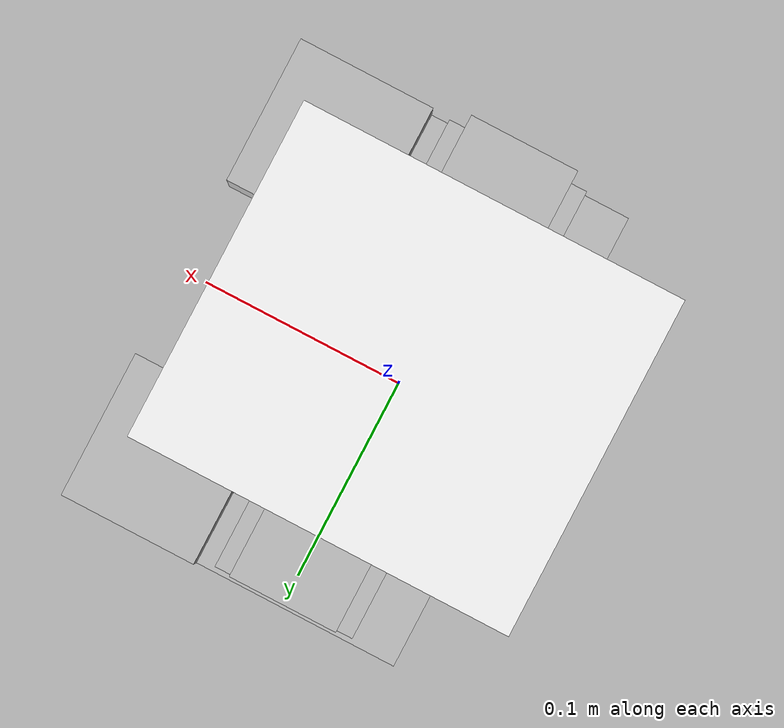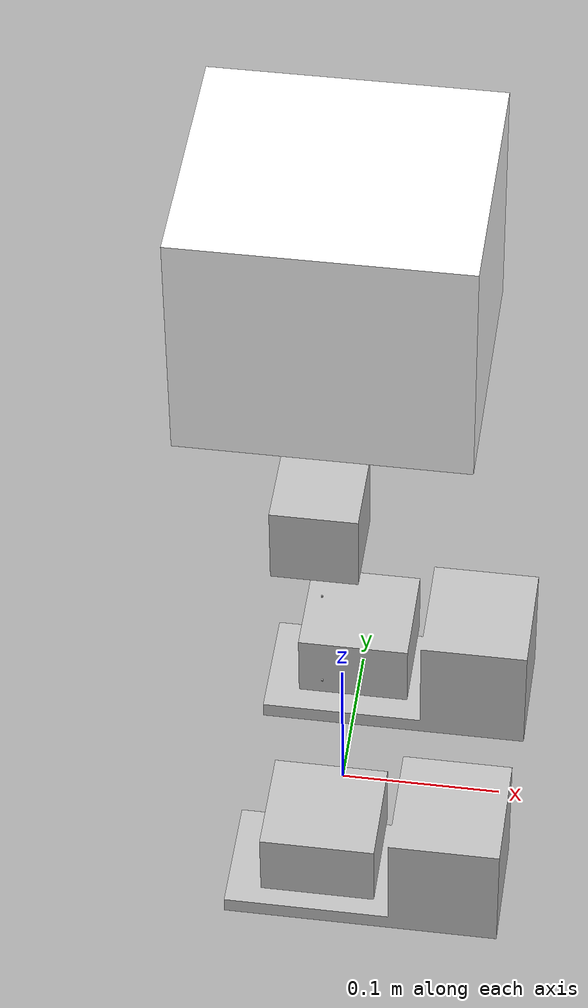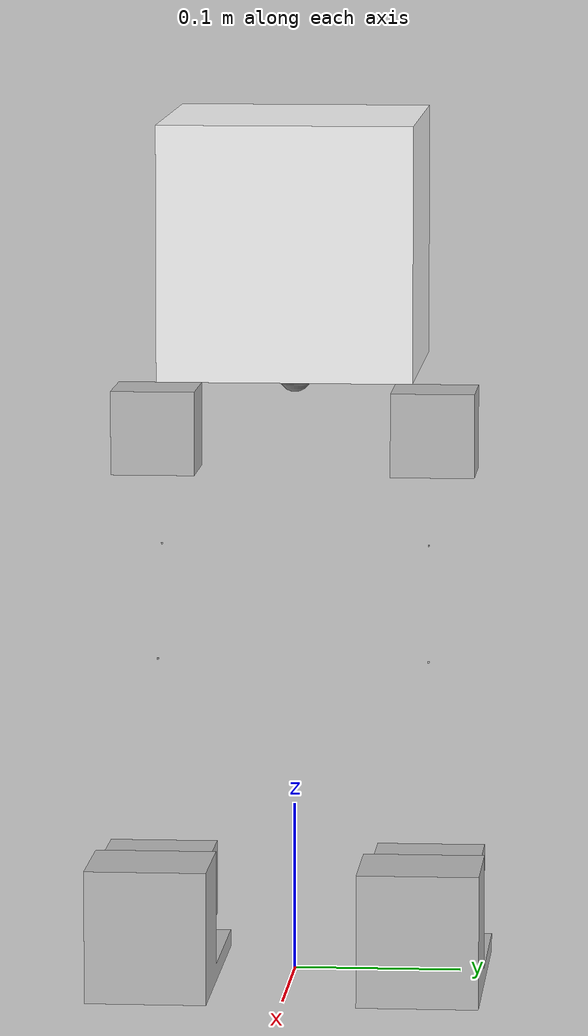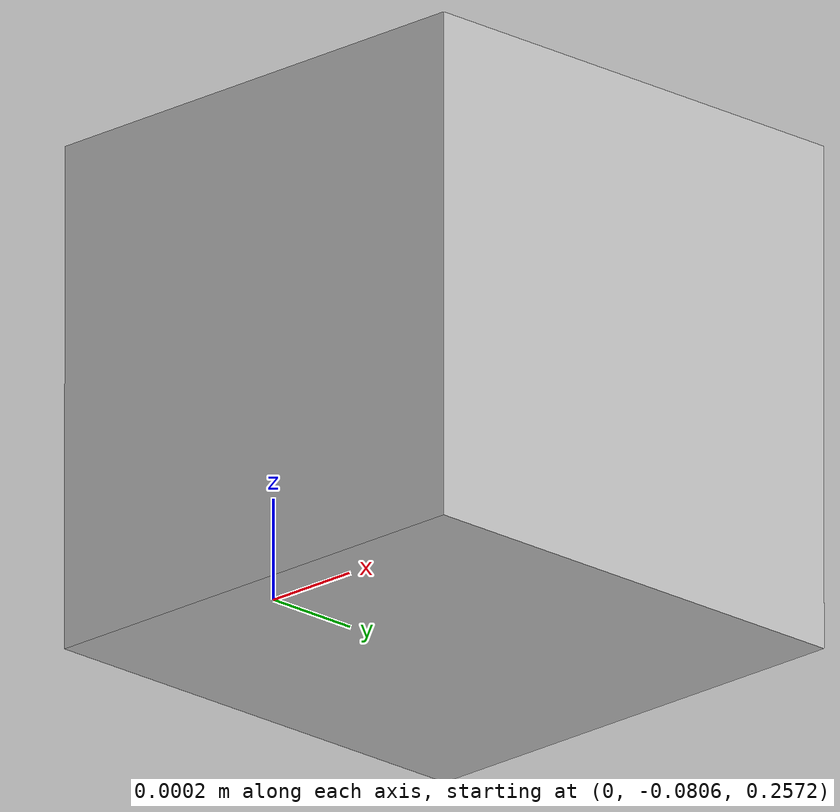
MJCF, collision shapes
<mujoco model="pi">
  <compiler angle="radian" meshdir="../meshes/"/>

  <default>
    <joint damping="0.001" armature="0.01" frictionloss="0.1"/>
  </default>

  <asset>
    <mesh name="baselink_1" file="baselink_1.STL"/>
    <mesh name="l_hip_pitch_link" file="l_hip_pitch_link.STL"/>
    <mesh name="l_hip_roll_link" file="l_hip_roll_link.STL"/>
    <mesh name="l_thigh_link" file="l_thigh_link.STL"/>
    <mesh name="l_calf_link" file="l_calf_link.STL"/>
    <mesh name="l_ankle_pitch_link" file="l_ankle_pitch_link.STL"/>
    <mesh name="l_ankle_roll_link" file="l_ankle_roll_link.STL"/>
    <mesh name="foot" file="foot.STL" scale="0.001 0.001 0.001"/>
    <mesh name="r_hip_pitch_link" file="r_hip_pitch_link.STL"/>
    <mesh name="r_hip_roll_link" file="r_hip_roll_link.STL"/>
    <mesh name="r_thigh_link" file="r_thigh_link.STL"/>
    <mesh name="r_calf_link" file="r_calf_link.STL"/>
    <mesh name="r_ankle_pitch_link" file="r_ankle_pitch_link.STL"/>
    <mesh name="r_ankle_roll_link" file="r_ankle_roll_link.STL"/>
  </asset>

  <worldbody>
    <body name="base_link" pos="0.0 0.0 0.36">
      <inertial pos="0.00071885 2.781e-05 0.023702" quat="0.705115 -0.000892642 -0.000400218 0.709092" mass="1.94351" diaginertia="0.0108944 0.0104768 0.00389879"/>
      <joint name="floating_base_joint" type="free" limited="false" actuatorfrclimited="false"/>
      <geom type="mesh" contype="0" conaffinity="0" group="1" density="0" rgba="1 1 1 1" mesh="baselink_1"/>
      <geom size="0.085 0.075 0.075" pos="0 0 0.08" type="box" rgba="1 1 1 1"/>
      <site name='imu' size='0.01' pos='0.0 0 0.0'/>

      <body name="r_hip_pitch_link" pos="-5.1979e-05 -0.0233 -0.033">
        <inertial pos="0.00136979 -0.0311672 0.0002713" quat="0.443024 0.552233 -0.448007 0.545947" mass="0.398576" diaginertia="0.000125564 0.000105619 9.66873e-05"/>
        <joint name="r_hip_pitch_joint" pos="0 0 0" axis="0 1 0" range="-1.5 1.5"  damping="0.1"/>
        <geom type="mesh" contype="0" conaffinity="0" group="1" density="0" rgba="0.75294 0.75294 0.75294 1" mesh="r_hip_pitch_link"/>
        <geom size="0.025 0.025 0.025" pos="0 -0.06 0" type="box" rgba="0.75294 0.75294 0.75294 1"/>
        <body name="r_hip_roll_link" pos="0.00025 -0.0568 0">
          <inertial pos="0.00098441 -0.0339458 -0.0612495" quat="0.704737 0.027725 0.0285958 0.70835" mass="0.485718" diaginertia="0.000574153 0.000484944 0.000220223"/>
          <joint name="r_hip_roll_joint" pos="0 0 0" axis="1 0 0" range="-0.38 1.2"  damping="0.1"/>
          <geom type="mesh" contype="0" conaffinity="0" group="1" density="0" rgba="0.75294 0.75294 0.75294 1" mesh="r_hip_roll_link"/>
          <geom size="0.0005 0.0005 0.0005" type="box" rgba="0.75294 0.75294 0.75294 1"/>
          <body name="r_thigh_link" pos="-0.00025 0 -0.06925">
            <inertial pos="0 0.00116854 -0.047559" quat="0.749712 0.661764 0 0" mass="0.10938" diaginertia="0.0001194 9.02029e-05 5.69171e-05"/>
            <joint name="r_thigh_joint" pos="0 0 0" axis="0 0 1" range="-1 1"  damping="0.1"/>
            <geom type="mesh" contype="0" conaffinity="0" group="1" density="0" rgba="0.75294 0.75294 0.75294 1" mesh="r_thigh_link"/>
            <geom size="0.0005 0.0005 0.0005" type="box" rgba="0.75294 0.75294 0.75294 1"/>
            <body name="r_calf_link" pos="0 -0.0027 -0.07025">
              <inertial pos="-1.362e-05 -0.00276237 -0.0700557" quat="0.999996 0.000151905 -0.00210869 0.00182335" mass="0.80287" diaginertia="0.00372691 0.00371467 0.000183917"/>
              <joint name="r_calf_joint" pos="0 0 0" axis="0 1 0" range="0 2.2"  damping="0.1"/>
              <geom type="mesh" contype="0" conaffinity="0" group="1" density="0" rgba="0.75294 0.75294 0.75294 1" mesh="r_calf_link"/>
              <geom size="0.0005 0.0005 0.0005" type="box" rgba="0.75294 0.75294 0.75294 1"/>
              <body name="r_ankle_pitch_link" pos="0 0 -0.14">
                <inertial pos="0.00655369 0.00218609 -1.446e-05" quat="0.0129996 0.707174 -0.0129826 0.706801" mass="0.165583" diaginertia="0.00027198 0.000184707 0.000120153"/>
                <joint name="r_ankle_pitch_joint" pos="0 0 0" axis="0 1 0" range="-0.8 0.8"  damping="0.1"/>
                <geom type="mesh" contype="0" conaffinity="0" group="1" density="0" rgba="0.75294 0.75294 0.75294 1" mesh="r_ankle_pitch_link"/>
                <geom size="0.035 0.0325 0.0225" type="box" rgba="0.75294 0.75294 0.75294 1"/>
                <body name="r_ankle_roll_link" pos="0.07525 0.0027 0">
                  <inertial pos="0.00265784 0.00017568 -0.0126664" quat="0.559425 0.431421 0.433461 0.559492" mass="0.622349" diaginertia="0.00146851 0.00135082 0.000403903"/>
                  <joint name="r_ankle_roll_joint" pos="0 0 0" axis="1 0 0" range="-0.6 0.6"  damping="0.1"/>
                  <geom type="mesh" contype="0" conaffinity="0" group="1" density="0" rgba="0.75294 0.75294 0.75294 1" mesh="r_ankle_roll_link"/>
                  <geom pos="0.036 -0.036 -0.0479" quat="0.707105 0 0 0.707108" type="mesh" rgba="0.75294 0.75294 0.75294 1" group="3" mesh="foot"/>
                </body>
              </body>
            </body>
          </body>
        </body>
      </body>

      <body name="l_hip_pitch_link" pos="-5.1979e-05 0.0233 -0.033">
        <inertial pos="0.00136864 0.0306252 0.0002713" quat="0.557997 0.438077 -0.567439 0.418021" mass="0.398576" diaginertia="0.000124246 0.000104469 9.64753e-05"/>
        <joint name="l_hip_pitch_joint" pos="0 0 0" axis="0 1 0" range="-1.5 1.5"  damping="0.1"/>
        <geom type="mesh" contype="0" conaffinity="0" group="1" density="0" rgba="0.75294 0.75294 0.75294 1" mesh="l_hip_pitch_link"/>
        <geom size="0.025 0.025 0.025" pos="0 0.06 0" type="box" rgba="0.75294 0.75294 0.75294 1"/>
        <body name="l_hip_roll_link" pos="0 0.0568 0">
          <inertial pos="0.00098441 0.00013641 -0.0612495" quat="0.704579 0.0290139 0.027293 0.708507" mass="0.485718" diaginertia="0.000574155 0.000484944 0.000220212"/>
          <joint name="l_hip_roll_joint" pos="0 0 0" axis="1 0 0" range="-0.38 1.2"  damping="0.1"/>
          <geom type="mesh" contype="0" conaffinity="0" group="1" density="0" rgba="0.75294 0.75294 0.75294 1" mesh="l_hip_roll_link"/>
          <geom size="0.0005 0.0005 0.0005" type="box" rgba="0.75294 0.75294 0.75294 1"/>
          <body name="l_thigh_link" pos="0 0 -0.06925">
            <inertial pos="0 -0.00095496 -0.0236847" quat="0.660453 0.750867 0 0" mass="0.10938" diaginertia="0.00011979 9.06194e-05 5.68806e-05"/>
            <joint name="l_thigh_joint" pos="0 0 0" axis="0 0 1" range="-1 1"  damping="0.1"/>
            <geom type="mesh" contype="0" conaffinity="0" group="1" density="0" rgba="0.75294 0.75294 0.75294 1" mesh="l_thigh_link"/>
            <geom size="0.0005 0.0005 0.0005" type="box" rgba="0.75294 0.75294 0.75294 1"/>
            <body name="l_calf_link" pos="0 0 -0.07025">
              <inertial pos="-1.362e-05 0.00276237 -0.0700557" quat="0.999997 -0.000158839 0.00210677 -0.00144397" mass="0.80287" diaginertia="0.00372691 0.00371467 0.000183917"/>
              <joint name="l_calf_joint" pos="0 0 0" axis="0 1 0" range="0 2.2"  damping="0.1"/>
              <geom type="mesh" contype="0" conaffinity="0" group="1" density="0" rgba="0.75294 0.75294 0.75294 1" mesh="l_calf_link"/>
              <geom size="0.0005 0.0005 0.0005" type="box" rgba="0.75294 0.75294 0.75294 1"/>
              <body name="l_ankle_pitch_link" pos="0 0 -0.14">
                <inertial pos="0.00655369 -0.00218609 1.446e-05" quat="-0.0129826 0.706801 0.0129996 0.707174" mass="0.165583" diaginertia="0.00027198 0.000184707 0.000120153"/>
                <joint name="l_ankle_pitch_joint" pos="0 0 0" axis="0 1 0" range="-0.8 0.8"  damping="0.1"/>
                <geom type="mesh" contype="0" conaffinity="0" group="1" density="0" rgba="0.75294 0.75294 0.75294 1" mesh="l_ankle_pitch_link"/>
                <geom size="0.035 0.0325 0.0225" type="box" rgba="0.75294 0.75294 0.75294 1"/>
                <body name="l_ankle_roll_link" pos="0.07525 0 0">
                  <inertial pos="0.00265784 0.00017568 -0.0126664" quat="0.559425 0.431421 0.433461 0.559492" mass="0.622349" diaginertia="0.00146851 0.00135082 0.000403903"/>
                  <joint name="l_ankle_roll_joint" pos="0 0 0" axis="1 0 0" range="-0.6 0.6"  damping="0.1"/>
                  <geom type="mesh" contype="0" conaffinity="0" group="1" density="0" rgba="0.75294 0.75294 0.75294 1" mesh="l_ankle_roll_link"/>
                  <geom pos="0.036 -0.036 -0.0479" quat="0.707105 0 0 0.707108" type="mesh" rgba="0.75294 0.75294 0.75294 1" group="3" mesh="foot"/>
                </body>
              </body>
            </body>
          </body>
        </body>
      </body>

    </body>
  </worldbody>

  <actuator>
      <!-- 其他执行器 -->
    <motor name="r_hip_pitch_joint" joint="r_hip_pitch_joint" gear="1" ctrllimited="true" ctrlrange="-16 16" />
    <motor name="r_hip_roll_joint" joint="r_hip_roll_joint" gear="1" ctrllimited="true" ctrlrange="-16 16" />
    <motor name="r_thigh_joint" joint="r_thigh_joint" gear="1" ctrllimited="true" ctrlrange="-16 16" />
    <motor name="r_calf_joint" joint="r_calf_joint" gear="1" ctrllimited="true" ctrlrange="-16 16" />
    <motor name="r_ankle_pitch_joint" joint="r_ankle_pitch_joint" gear="1" ctrllimited="true" ctrlrange="-16 16" />
    <motor name="r_ankle_roll_joint" joint="r_ankle_roll_joint" gear="1" ctrllimited="true" ctrlrange="-16 16" />
    <motor name="l_hip_pitch_joint" joint="l_hip_pitch_joint" gear="1" ctrllimited="true" ctrlrange="-16 16" />
    <motor name="l_hip_roll_joint" joint="l_hip_roll_joint" gear="1" ctrllimited="true" ctrlrange="-16 16" />
    <motor name="l_thigh_joint" joint="l_thigh_joint" gear="1" ctrllimited="true" ctrlrange="-16 16" />
    <motor name="l_calf_joint" joint="l_calf_joint" gear="1" ctrllimited="true" ctrlrange="-16 16" />
    <motor name="l_ankle_pitch_joint" joint="l_ankle_pitch_joint" gear="1" ctrllimited="true" ctrlrange="-16 16" />
    <motor name="l_ankle_roll_joint" joint="l_ankle_roll_joint" gear="1" ctrllimited="true" ctrlrange="-16 16" />
  </actuator>

  <sensor>
    <!-- Position sensors -->
    <actuatorpos name="r_hip_pitch_joint_p" actuator="r_hip_pitch_joint" user="13"/>
    <actuatorpos name="r_hip_roll_joint_p" actuator="r_hip_roll_joint" user="13"/>
    <actuatorpos name="r_thigh_joint_p" actuator="r_thigh_joint" user="13"/>
    <actuatorpos name="r_calf_joint_p" actuator="r_calf_joint" user="13"/>
    <actuatorpos name="r_ankle_pitch_joint_p" actuator="r_ankle_pitch_joint" user="13"/>
    <actuatorpos name="r_ankle_roll_joint_p" actuator="r_ankle_roll_joint" user="13"/>
    <actuatorpos name="l_hip_pitch_joint_p" actuator="l_hip_pitch_joint" user="13"/>
    <actuatorpos name="l_hip_roll_joint_p" actuator="l_hip_roll_joint" user="13"/>
    <actuatorpos name="l_thigh_joint_p" actuator="l_thigh_joint" user="13"/>
    <actuatorpos name="l_calf_joint_p" actuator="l_calf_joint" user="13"/>
    <actuatorpos name="l_ankle_pitch_joint_p" actuator="l_ankle_pitch_joint" user="13"/>
    <actuatorpos name="l_ankle_roll_joint_p" actuator="l_ankle_roll_joint" user="13"/>

    <!-- Velocity sensors -->
    <actuatorvel name="r_hip_pitch_joint_v" actuator="r_hip_pitch_joint" user="13" noise="1e-3"/>
    <actuatorvel name="r_hip_roll_joint_v" actuator="r_hip_roll_joint" user="13" noise="1e-3"/>
    <actuatorvel name="r_thigh_joint_v" actuator="r_thigh_joint" user="13" noise="1e-3"/>
    <actuatorvel name="r_calf_joint_v" actuator="r_calf_joint" user="13" noise="1e-3"/>
    <actuatorvel name="r_ankle_pitch_joint_v" actuator="r_ankle_pitch_joint" user="13" noise="1e-3"/>
    <actuatorvel name="r_ankle_roll_joint_v" actuator="r_ankle_roll_joint" user="13" noise="1e-3"/>
    <actuatorvel name="l_hip_pitch_joint_v" actuator="l_hip_pitch_joint" user="13" noise="1e-3"/>
    <actuatorvel name="l_hip_roll_joint_v" actuator="l_hip_roll_joint" user="13" noise="1e-3"/>
    <actuatorvel name="l_thigh_joint_v" actuator="l_thigh_joint" user="13" noise="1e-3"/>
    <actuatorvel name="l_calf_joint_v" actuator="l_calf_joint" user="13" noise="1e-3"/>
    <actuatorvel name="l_ankle_pitch_joint_v" actuator="l_ankle_pitch_joint" user="13" noise="1e-3"/>
    <actuatorvel name="l_ankle_roll_joint_v" actuator="l_ankle_roll_joint" user="13" noise="1e-3"/>

    <!-- Force sensors -->
    <actuatorfrc name="r_hip_pitch_joint_f" actuator="r_hip_pitch_joint" user="13" noise="1e-3"/>
    <actuatorfrc name="r_hip_roll_joint_f" actuator="r_hip_roll_joint" user="13" noise="1e-3"/>
    <actuatorfrc name="r_thigh_joint_f" actuator="r_thigh_joint" user="13" noise="1e-3"/>
    <actuatorfrc name="r_calf_joint_f" actuator="r_calf_joint" user="13" noise="1e-3"/>
    <actuatorfrc name="r_ankle_pitch_joint_f" actuator="r_ankle_pitch_joint" user="13" noise="1e-3"/>
    <actuatorfrc name="r_ankle_roll_joint_f" actuator="r_ankle_roll_joint" user="13" noise="1e-3"/>
    <actuatorfrc name="l_hip_pitch_joint_f" actuator="l_hip_pitch_joint" user="13" noise="1e-3"/>
    <actuatorfrc name="l_hip_roll_joint_f" actuator="l_hip_roll_joint" user="13" noise="1e-3"/>
    <actuatorfrc name="l_thigh_joint_f" actuator="l_thigh_joint" user="13" noise="1e-3"/>
    <actuatorfrc name="l_calf_joint_f" actuator="l_calf_joint" user="13" noise="1e-3"/>
    <actuatorfrc name="l_ankle_pitch_joint_f" actuator="l_ankle_pitch_joint" user="13" noise="1e-3"/>
    <actuatorfrc name="l_ankle_roll_joint_f" actuator="l_ankle_roll_joint" user="13" noise="1e-3"/>

    <framequat name='orientation' objtype='site' noise='0.001' objname='imu'/>
    <framepos name='position' objtype='site' noise='0.001' objname='imu'/>
    <gyro name='angular-velocity' site='imu' noise='0.005' cutoff='34.9'/>
    <velocimeter name='linear-velocity' site='imu' noise='0.001' cutoff='30'/>
    <accelerometer name='linear-acceleration' site='imu' noise='0.005' cutoff='157'/>
    <magnetometer name='magnetometer' site='imu'/>

  </sensor>

</mujoco>
